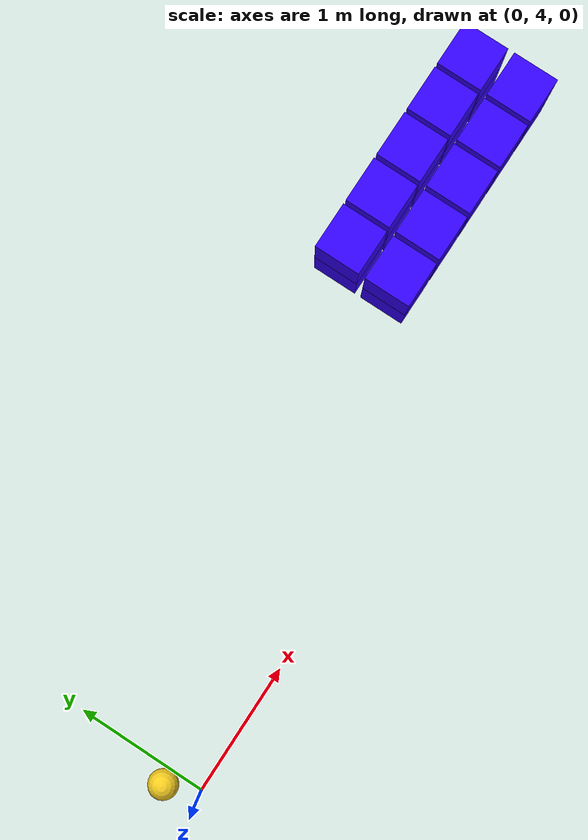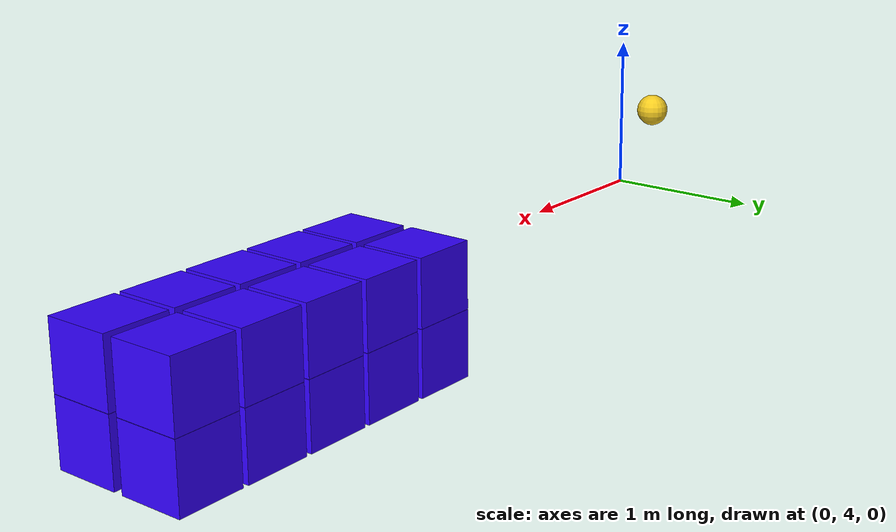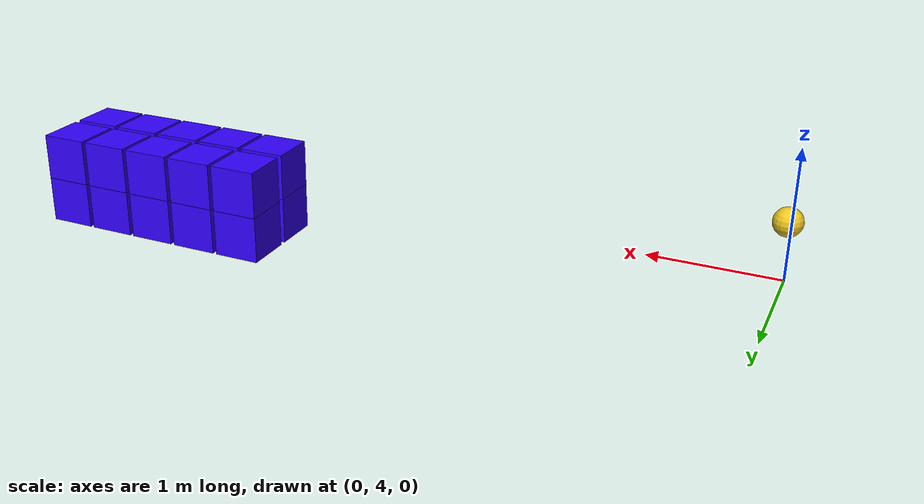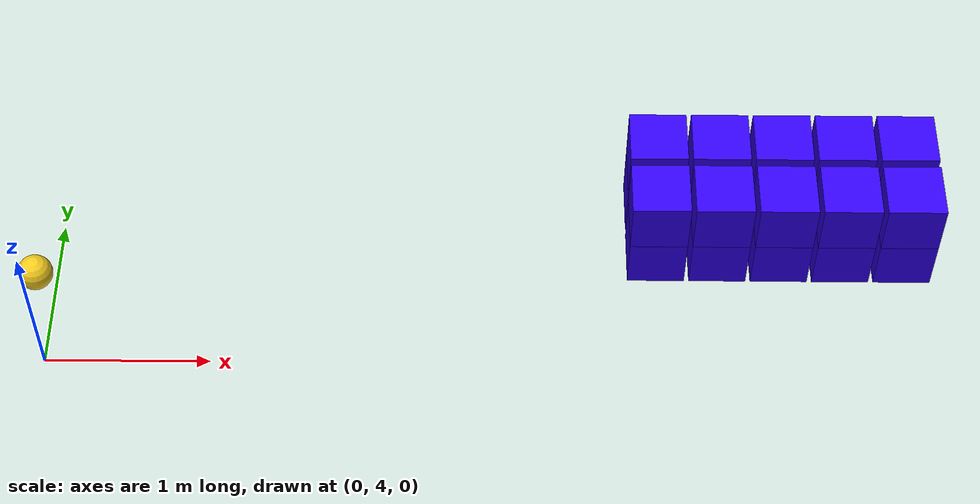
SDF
<sdf version="1.9">
 <world name="robocon2027">
  <model name="earth_blue_01">
   <pose>5.2250 4.8000 0.1770 0 0 0</pose>
   <link name="link">
    <inertial>
     <mass>0.6</mass>
     <inertia><ixx>0.012250</ixx><iyy>0.012250</iyy><izz>0.012250</izz></inertia>
    </inertial>
    <collision name="c">
     <geometry><box><size>0.35 0.35 0.35</size></box></geometry>
     <surface><friction><ode><mu>0.7</mu><mu2>0.7</mu2></ode></friction></surface>
    </collision>
    <visual name="v">
     <geometry><box><size>0.35 0.35 0.35</size></box></geometry>
     <material><ambient>0.196 0.0 1.0 1</ambient><diffuse>0.196 0.0 1.0 1</diffuse></material>
    </visual>
   </link>
  </model>
  <model name="earth_blue_02">
   <pose>5.2250 4.8000 0.5290 0 0 0</pose>
   <link name="link">
    <inertial>
     <mass>0.6</mass>
     <inertia><ixx>0.012250</ixx><iyy>0.012250</iyy><izz>0.012250</izz></inertia>
    </inertial>
    <collision name="c">
     <geometry><box><size>0.35 0.35 0.35</size></box></geometry>
     <surface><friction><ode><mu>0.7</mu><mu2>0.7</mu2></ode></friction></surface>
    </collision>
    <visual name="v">
     <geometry><box><size>0.35 0.35 0.35</size></box></geometry>
     <material><ambient>0.196 0.0 1.0 1</ambient><diffuse>0.196 0.0 1.0 1</diffuse></material>
    </visual>
   </link>
  </model>
  <model name="earth_blue_03">
   <pose>5.2250 5.2000 0.1770 0 0 0</pose>
   <link name="link">
    <inertial>
     <mass>0.6</mass>
     <inertia><ixx>0.012250</ixx><iyy>0.012250</iyy><izz>0.012250</izz></inertia>
    </inertial>
    <collision name="c">
     <geometry><box><size>0.35 0.35 0.35</size></box></geometry>
     <surface><friction><ode><mu>0.7</mu><mu2>0.7</mu2></ode></friction></surface>
    </collision>
    <visual name="v">
     <geometry><box><size>0.35 0.35 0.35</size></box></geometry>
     <material><ambient>0.196 0.0 1.0 1</ambient><diffuse>0.196 0.0 1.0 1</diffuse></material>
    </visual>
   </link>
  </model>
  <model name="earth_blue_04">
   <pose>5.2250 5.2000 0.5290 0 0 0</pose>
   <link name="link">
    <inertial>
     <mass>0.6</mass>
     <inertia><ixx>0.012250</ixx><iyy>0.012250</iyy><izz>0.012250</izz></inertia>
    </inertial>
    <collision name="c">
     <geometry><box><size>0.35 0.35 0.35</size></box></geometry>
     <surface><friction><ode><mu>0.7</mu><mu2>0.7</mu2></ode></friction></surface>
    </collision>
    <visual name="v">
     <geometry><box><size>0.35 0.35 0.35</size></box></geometry>
     <material><ambient>0.196 0.0 1.0 1</ambient><diffuse>0.196 0.0 1.0 1</diffuse></material>
    </visual>
   </link>
  </model>
  <model name="earth_blue_05">
   <pose>4.8450 4.8000 0.1770 0 0 0</pose>
   <link name="link">
    <inertial>
     <mass>0.6</mass>
     <inertia><ixx>0.012250</ixx><iyy>0.012250</iyy><izz>0.012250</izz></inertia>
    </inertial>
    <collision name="c">
     <geometry><box><size>0.35 0.35 0.35</size></box></geometry>
     <surface><friction><ode><mu>0.7</mu><mu2>0.7</mu2></ode></friction></surface>
    </collision>
    <visual name="v">
     <geometry><box><size>0.35 0.35 0.35</size></box></geometry>
     <material><ambient>0.196 0.0 1.0 1</ambient><diffuse>0.196 0.0 1.0 1</diffuse></material>
    </visual>
   </link>
  </model>
  <model name="earth_blue_06">
   <pose>4.8450 4.8000 0.5290 0 0 0</pose>
   <link name="link">
    <inertial>
     <mass>0.6</mass>
     <inertia><ixx>0.012250</ixx><iyy>0.012250</iyy><izz>0.012250</izz></inertia>
    </inertial>
    <collision name="c">
     <geometry><box><size>0.35 0.35 0.35</size></box></geometry>
     <surface><friction><ode><mu>0.7</mu><mu2>0.7</mu2></ode></friction></surface>
    </collision>
    <visual name="v">
     <geometry><box><size>0.35 0.35 0.35</size></box></geometry>
     <material><ambient>0.196 0.0 1.0 1</ambient><diffuse>0.196 0.0 1.0 1</diffuse></material>
    </visual>
   </link>
  </model>
  <model name="earth_blue_07">
   <pose>4.8450 5.2000 0.1770 0 0 0</pose>
   <link name="link">
    <inertial>
     <mass>0.6</mass>
     <inertia><ixx>0.012250</ixx><iyy>0.012250</iyy><izz>0.012250</izz></inertia>
    </inertial>
    <collision name="c">
     <geometry><box><size>0.35 0.35 0.35</size></box></geometry>
     <surface><friction><ode><mu>0.7</mu><mu2>0.7</mu2></ode></friction></surface>
    </collision>
    <visual name="v">
     <geometry><box><size>0.35 0.35 0.35</size></box></geometry>
     <material><ambient>0.196 0.0 1.0 1</ambient><diffuse>0.196 0.0 1.0 1</diffuse></material>
    </visual>
   </link>
  </model>
  <model name="earth_blue_08">
   <pose>4.8450 5.2000 0.5290 0 0 0</pose>
   <link name="link">
    <inertial>
     <mass>0.6</mass>
     <inertia><ixx>0.012250</ixx><iyy>0.012250</iyy><izz>0.012250</izz></inertia>
    </inertial>
    <collision name="c">
     <geometry><box><size>0.35 0.35 0.35</size></box></geometry>
     <surface><friction><ode><mu>0.7</mu><mu2>0.7</mu2></ode></friction></surface>
    </collision>
    <visual name="v">
     <geometry><box><size>0.35 0.35 0.35</size></box></geometry>
     <material><ambient>0.196 0.0 1.0 1</ambient><diffuse>0.196 0.0 1.0 1</diffuse></material>
    </visual>
   </link>
  </model>
  <model name="earth_blue_09">
   <pose>4.4650 4.8000 0.1770 0 0 0</pose>
   <link name="link">
    <inertial>
     <mass>0.6</mass>
     <inertia><ixx>0.012250</ixx><iyy>0.012250</iyy><izz>0.012250</izz></inertia>
    </inertial>
    <collision name="c">
     <geometry><box><size>0.35 0.35 0.35</size></box></geometry>
     <surface><friction><ode><mu>0.7</mu><mu2>0.7</mu2></ode></friction></surface>
    </collision>
    <visual name="v">
     <geometry><box><size>0.35 0.35 0.35</size></box></geometry>
     <material><ambient>0.196 0.0 1.0 1</ambient><diffuse>0.196 0.0 1.0 1</diffuse></material>
    </visual>
   </link>
  </model>
  <model name="earth_blue_10">
   <pose>4.4650 4.8000 0.5290 0 0 0</pose>
   <link name="link">
    <inertial>
     <mass>0.6</mass>
     <inertia><ixx>0.012250</ixx><iyy>0.012250</iyy><izz>0.012250</izz></inertia>
    </inertial>
    <collision name="c">
     <geometry><box><size>0.35 0.35 0.35</size></box></geometry>
     <surface><friction><ode><mu>0.7</mu><mu2>0.7</mu2></ode></friction></surface>
    </collision>
    <visual name="v">
     <geometry><box><size>0.35 0.35 0.35</size></box></geometry>
     <material><ambient>0.196 0.0 1.0 1</ambient><diffuse>0.196 0.0 1.0 1</diffuse></material>
    </visual>
   </link>
  </model>
  <model name="earth_blue_11">
   <pose>4.4650 5.2000 0.1770 0 0 0</pose>
   <link name="link">
    <inertial>
     <mass>0.6</mass>
     <inertia><ixx>0.012250</ixx><iyy>0.012250</iyy><izz>0.012250</izz></inertia>
    </inertial>
    <collision name="c">
     <geometry><box><size>0.35 0.35 0.35</size></box></geometry>
     <surface><friction><ode><mu>0.7</mu><mu2>0.7</mu2></ode></friction></surface>
    </collision>
    <visual name="v">
     <geometry><box><size>0.35 0.35 0.35</size></box></geometry>
     <material><ambient>0.196 0.0 1.0 1</ambient><diffuse>0.196 0.0 1.0 1</diffuse></material>
    </visual>
   </link>
  </model>
  <model name="earth_blue_12">
   <pose>4.4650 5.2000 0.5290 0 0 0</pose>
   <link name="link">
    <inertial>
     <mass>0.6</mass>
     <inertia><ixx>0.012250</ixx><iyy>0.012250</iyy><izz>0.012250</izz></inertia>
    </inertial>
    <collision name="c">
     <geometry><box><size>0.35 0.35 0.35</size></box></geometry>
     <surface><friction><ode><mu>0.7</mu><mu2>0.7</mu2></ode></friction></surface>
    </collision>
    <visual name="v">
     <geometry><box><size>0.35 0.35 0.35</size></box></geometry>
     <material><ambient>0.196 0.0 1.0 1</ambient><diffuse>0.196 0.0 1.0 1</diffuse></material>
    </visual>
   </link>
  </model>
  <model name="earth_blue_13">
   <pose>4.0850 4.8000 0.1770 0 0 0</pose>
   <link name="link">
    <inertial>
     <mass>0.6</mass>
     <inertia><ixx>0.012250</ixx><iyy>0.012250</iyy><izz>0.012250</izz></inertia>
    </inertial>
    <collision name="c">
     <geometry><box><size>0.35 0.35 0.35</size></box></geometry>
     <surface><friction><ode><mu>0.7</mu><mu2>0.7</mu2></ode></friction></surface>
    </collision>
    <visual name="v">
     <geometry><box><size>0.35 0.35 0.35</size></box></geometry>
     <material><ambient>0.196 0.0 1.0 1</ambient><diffuse>0.196 0.0 1.0 1</diffuse></material>
    </visual>
   </link>
  </model>
  <model name="earth_blue_14">
   <pose>4.0850 4.8000 0.5290 0 0 0</pose>
   <link name="link">
    <inertial>
     <mass>0.6</mass>
     <inertia><ixx>0.012250</ixx><iyy>0.012250</iyy><izz>0.012250</izz></inertia>
    </inertial>
    <collision name="c">
     <geometry><box><size>0.35 0.35 0.35</size></box></geometry>
     <surface><friction><ode><mu>0.7</mu><mu2>0.7</mu2></ode></friction></surface>
    </collision>
    <visual name="v">
     <geometry><box><size>0.35 0.35 0.35</size></box></geometry>
     <material><ambient>0.196 0.0 1.0 1</ambient><diffuse>0.196 0.0 1.0 1</diffuse></material>
    </visual>
   </link>
  </model>
  <model name="earth_blue_15">
   <pose>4.0850 5.2000 0.1770 0 0 0</pose>
   <link name="link">
    <inertial>
     <mass>0.6</mass>
     <inertia><ixx>0.012250</ixx><iyy>0.012250</iyy><izz>0.012250</izz></inertia>
    </inertial>
    <collision name="c">
     <geometry><box><size>0.35 0.35 0.35</size></box></geometry>
     <surface><friction><ode><mu>0.7</mu><mu2>0.7</mu2></ode></friction></surface>
    </collision>
    <visual name="v">
     <geometry><box><size>0.35 0.35 0.35</size></box></geometry>
     <material><ambient>0.196 0.0 1.0 1</ambient><diffuse>0.196 0.0 1.0 1</diffuse></material>
    </visual>
   </link>
  </model>
  <model name="earth_blue_16">
   <pose>4.0850 5.2000 0.5290 0 0 0</pose>
   <link name="link">
    <inertial>
     <mass>0.6</mass>
     <inertia><ixx>0.012250</ixx><iyy>0.012250</iyy><izz>0.012250</izz></inertia>
    </inertial>
    <collision name="c">
     <geometry><box><size>0.35 0.35 0.35</size></box></geometry>
     <surface><friction><ode><mu>0.7</mu><mu2>0.7</mu2></ode></friction></surface>
    </collision>
    <visual name="v">
     <geometry><box><size>0.35 0.35 0.35</size></box></geometry>
     <material><ambient>0.196 0.0 1.0 1</ambient><diffuse>0.196 0.0 1.0 1</diffuse></material>
    </visual>
   </link>
  </model>
  <model name="earth_blue_17">
   <pose>3.7050 4.8000 0.1770 0 0 0</pose>
   <link name="link">
    <inertial>
     <mass>0.6</mass>
     <inertia><ixx>0.012250</ixx><iyy>0.012250</iyy><izz>0.012250</izz></inertia>
    </inertial>
    <collision name="c">
     <geometry><box><size>0.35 0.35 0.35</size></box></geometry>
     <surface><friction><ode><mu>0.7</mu><mu2>0.7</mu2></ode></friction></surface>
    </collision>
    <visual name="v">
     <geometry><box><size>0.35 0.35 0.35</size></box></geometry>
     <material><ambient>0.196 0.0 1.0 1</ambient><diffuse>0.196 0.0 1.0 1</diffuse></material>
    </visual>
   </link>
  </model>
  <model name="earth_blue_18">
   <pose>3.7050 4.8000 0.5290 0 0 0</pose>
   <link name="link">
    <inertial>
     <mass>0.6</mass>
     <inertia><ixx>0.012250</ixx><iyy>0.012250</iyy><izz>0.012250</izz></inertia>
    </inertial>
    <collision name="c">
     <geometry><box><size>0.35 0.35 0.35</size></box></geometry>
     <surface><friction><ode><mu>0.7</mu><mu2>0.7</mu2></ode></friction></surface>
    </collision>
    <visual name="v">
     <geometry><box><size>0.35 0.35 0.35</size></box></geometry>
     <material><ambient>0.196 0.0 1.0 1</ambient><diffuse>0.196 0.0 1.0 1</diffuse></material>
    </visual>
   </link>
  </model>
  <model name="earth_blue_19">
   <pose>3.7050 5.2000 0.1770 0 0 0</pose>
   <link name="link">
    <inertial>
     <mass>0.6</mass>
     <inertia><ixx>0.012250</ixx><iyy>0.012250</iyy><izz>0.012250</izz></inertia>
    </inertial>
    <collision name="c">
     <geometry><box><size>0.35 0.35 0.35</size></box></geometry>
     <surface><friction><ode><mu>0.7</mu><mu2>0.7</mu2></ode></friction></surface>
    </collision>
    <visual name="v">
     <geometry><box><size>0.35 0.35 0.35</size></box></geometry>
     <material><ambient>0.196 0.0 1.0 1</ambient><diffuse>0.196 0.0 1.0 1</diffuse></material>
    </visual>
   </link>
  </model>
  <model name="earth_blue_20">
   <pose>3.7050 5.2000 0.5290 0 0 0</pose>
   <link name="link">
    <inertial>
     <mass>0.6</mass>
     <inertia><ixx>0.012250</ixx><iyy>0.012250</iyy><izz>0.012250</izz></inertia>
    </inertial>
    <collision name="c">
     <geometry><box><size>0.35 0.35 0.35</size></box></geometry>
     <surface><friction><ode><mu>0.7</mu><mu2>0.7</mu2></ode></friction></surface>
    </collision>
    <visual name="v">
     <geometry><box><size>0.35 0.35 0.35</size></box></geometry>
     <material><ambient>0.196 0.0 1.0 1</ambient><diffuse>0.196 0.0 1.0 1</diffuse></material>
    </visual>
   </link>
  </model>
  <model name="mustika">
   <pose>0 4.25 0.5561 0 0 0</pose>
   <link name="link">
    <inertial>
     <mass>0.27</mass>
     <inertia><ixx>0.001985</ixx><iyy>0.001985</iyy><izz>0.001985</izz></inertia>
    </inertial>
    <collision name="c">
     <geometry><sphere><radius>0.105</radius></sphere></geometry>
     <surface><friction><ode><mu>0.6</mu><mu2>0.6</mu2></ode></friction></surface>
    </collision>
    <visual name="v">
     <geometry><sphere><radius>0.105</radius></sphere></geometry>
     <material><ambient>0.941 0.784 0.118 1</ambient><diffuse>0.941 0.784 0.118 1</diffuse></material>
    </visual>
   </link>
  </model>
 </world>
</sdf>
